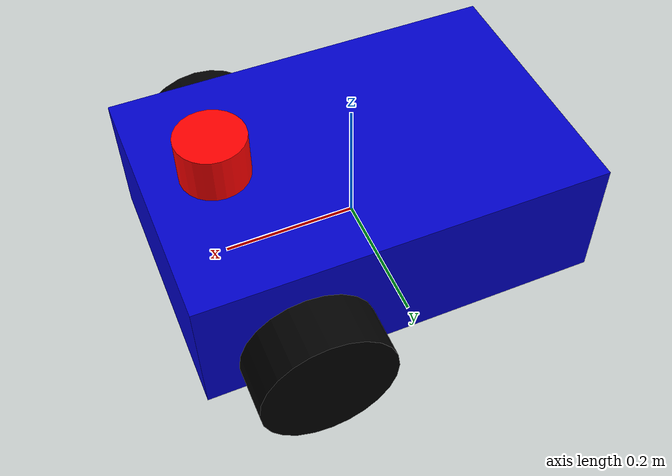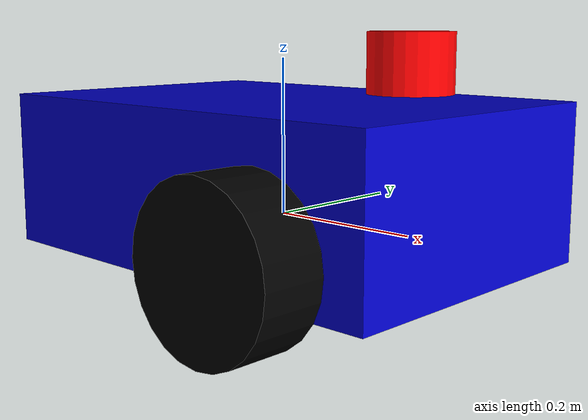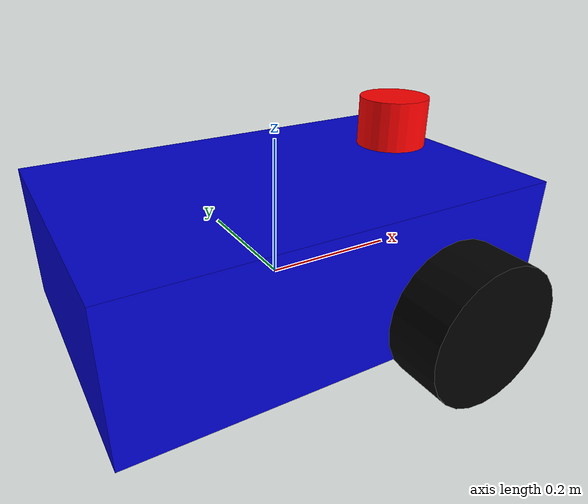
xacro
<?xml version="1.0"?>
<robot xmlns:xacro="http://www.ros.org/wiki/xacro" name="simple_robot">

    <!-- 수학 상수 -->
    <xacro:property name="pi_2" value="${pi/2}"/>

    <!-- 로봇 기하학 파라미터 -->

    <!-- Base(본체) -->
    <xacro:property name="base_length" value="0.6"/>
    <xacro:property name="base_width" value="0.4"/>
    <xacro:property name="base_height" value="0.2"/>
    <xacro:property name="base_mass" value="10"/>
    <xacro:property name="base_z_offset" value="0.05"/>

    <!-- Wheel(바퀴) -->
    <xacro:property name="wheel_radius" value="0.1"/>
    <xacro:property name="wheel_thickness" value="0.08"/>
    <xacro:property name="wheel_mass" value="1"/>
    <xacro:property name="wheel_separation" value="0.48"/>
    <xacro:property name="wheel_x_offset" value="0.15"/>
    <xacro:property name="wheel_z_offset" value="0"/>
    <xacro:property name="wheel_axis_direction" value="0 0 -1"/>

    <!-- Caster(캐스터) -->
    <xacro:property name="caster_radius" value="0.05"/>
    <xacro:property name="caster_mass" value="0.5"/>
    <xacro:property name="caster_x_offset" value="-0.2"/>
    <xacro:property name="caster_y_offset" value="0"/>
    <xacro:property name="caster_z_offset" value="-0.05"/>
    <xacro:property name="caster_friction_mu1" value="0.0"/>
    <xacro:property name="caster_friction_mu2" value="0.0"/>

    <!-- LiDAR -->
    <xacro:property name="lidar_radius" value="0.05"/>
    <xacro:property name="lidar_length" value="0.07"/>
    <xacro:property name="lidar_mass" value="0.3"/>
    <xacro:property name="lidar_x_offset" value="0.2"/>
    <xacro:property name="lidar_y_offset" value="0"/>
    <xacro:property name="lidar_z_offset" value="0.2"/>

    <!-- 색상 정의 -->
    <xacro:property name="color_blue" value="0 0 0.8 1"/>
    <xacro:property name="color_black" value="0 0 0 1"/>
    <xacro:property name="color_gray" value="0.5 0.5 0.5 1"/>
    <xacro:property name="color_red" value="1 0 0 1"/>

    <!-- ROS/Gazebo 토픽 및 프레임 -->
    <xacro:property name="odom_frame" value="odom"/>
    <xacro:property name="base_frame" value="base_link"/>
    <xacro:property name="cmd_vel_topic" value="cmd_vel"/>
    <xacro:property name="tf_topic" value="/tf"/>
    <xacro:property name="scan_topic" value="scan"/>

    <!-- 센서 파라미터 -->

    <!-- LiDAR -->
    <xacro:property name="lidar_update_rate" value="10"/>
    <xacro:property name="lidar_samples" value="360"/>
    <xacro:property name="lidar_resolution" value="1"/>
    <xacro:property name="lidar_min_angle" value="${-pi}"/>
    <xacro:property name="lidar_max_angle" value="${pi}"/>
    <xacro:property name="lidar_min_range" value="0.12"/>
    <xacro:property name="lidar_max_range" value="10.0"/>
    <xacro:property name="lidar_visualize" value="true"/>

    <!-- Odometry -->
    <xacro:property name="odom_publish_frequency" value="50"/>

    <!-- Gazebo 플러그인 파라미터 -->
    <xacro:property name="render_engine" value="ogre2"/>

    <!-- 관성 모멘트 계산 매크로 -->

    <!-- 직육면체(Box) -->
    <xacro:macro name="box_inertia" params="mass x y z">
        <inertial>
            <mass value="${mass}"/>
            <inertia
                    ixx="${(1/12) * mass * (y*y + z*z)}"
                    ixy="0.0"
                    ixz="0.0"
                    iyy="${(1/12) * mass * (x*x + z*z)}"
                    iyz="0.0"
                    izz="${(1/12) * mass * (x*x + y*y)}"/>
        </inertial>
    </xacro:macro>

    <!-- 원통(Cylinder) -->
    <xacro:macro name="cylinder_inertia" params="mass radius length">
        <inertial>
            <mass value="${mass}"/>
            <inertia
                    ixx="${(1/12) * mass * (3 * radius * radius + length * length)}"
                    ixy="0.0"
                    ixz="0.0"
                    iyy="${(1/12) * mass * (3 * radius * radius + length * length)}"
                    iyz="0.0"
                    izz="${(1/2) * mass * radius * radius}"/>
        </inertial>
    </xacro:macro>

    <!-- 구(Sphere) -->
    <xacro:macro name="sphere_inertia" params="mass radius">
        <inertial>
            <mass value="${mass}"/>
            <inertia
                    ixx="${(2/5) * mass * radius * radius}"
                    ixy="0.0"
                    ixz="0.0"
                    iyy="${(2/5) * mass * radius * radius}"
                    iyz="0.0"
                    izz="${(2/5) * mass * radius * radius}"/>
        </inertial>
    </xacro:macro>

    <!-- 색상 재료 매크로 -->
    <xacro:macro name="material_color" params="name rgba">
        <material name="${name}">
            <color rgba="${rgba}"/>
        </material>
    </xacro:macro>

    <!-- Base Link -->
    <link name="${base_frame}">
        <visual>
            <origin xyz="0 0 ${base_z_offset}" rpy="0 0 0"/>
            <geometry>
                <box size="${base_length} ${base_width} ${base_height}"/>
            </geometry>
            <xacro:material_color name="blue" rgba="${color_blue}"/>
        </visual>
        <collision>
            <origin xyz="0 0 ${base_z_offset}" rpy="0 0 0"/>
            <geometry>
                <box size="${base_length} ${base_width} ${base_height}"/>
            </geometry>
        </collision>
        <xacro:box_inertia mass="${base_mass}"
                           x="${base_length}"
                           y="${base_width}"
                           z="${base_height}"/>
    </link>

    <!-- Wheel 매크로 -->
    <xacro:macro name="wheel" params="prefix reflect">
        <link name="${prefix}_wheel">
            <visual>
                <geometry>
                    <cylinder radius="${wheel_radius}" length="${wheel_thickness}"/>
                </geometry>
                <xacro:material_color name="black" rgba="${color_black}"/>
            </visual>
            <collision>
                <geometry>
                    <cylinder radius="${wheel_radius}" length="${wheel_thickness}"/>
                </geometry>
            </collision>
            <xacro:cylinder_inertia mass="${wheel_mass}"
                                    radius="${wheel_radius}"
                                    length="${wheel_thickness}"/>
        </link>

        <joint name="${prefix}_wheel_joint" type="continuous">
            <parent link="${base_frame}"/>
            <child link="${prefix}_wheel"/>
            <origin xyz="${wheel_x_offset} ${reflect * wheel_separation/2} ${wheel_z_offset}"
                    rpy="${pi_2} 0 0"/>
            <axis xyz="${wheel_axis_direction}"/>
        </joint>
    </xacro:macro>

    <!-- Wheel 인스턴스 생성 -->
    <xacro:wheel prefix="left" reflect="1"/>
    <xacro:wheel prefix="right" reflect="-1"/>

    <!-- Caster 매크로 -->
    <xacro:macro name="caster" params="name x_offset y_offset z_offset">
        <link name="${name}">
            <visual>
                <geometry>
                    <sphere radius="${caster_radius}"/>
                </geometry>
                <xacro:material_color name="gray" rgba="${color_gray}"/>
            </visual>
            <collision>
                <geometry>
                    <sphere radius="${caster_radius}"/>
                </geometry>
            </collision>
            <xacro:sphere_inertia mass="${caster_mass}"
                                  radius="${caster_radius}"/>
        </link>

        <joint name="${name}_joint" type="fixed">
            <parent link="${base_frame}"/>
            <child link="${name}"/>
            <origin xyz="${x_offset} ${y_offset} ${z_offset}" rpy="0 0 0"/>
        </joint>

        <gazebo reference="${name}">
            <mu1>${caster_friction_mu1}</mu1>
            <mu2>${caster_friction_mu2}</mu2>
        </gazebo>
    </xacro:macro>

    <!-- Caster 인스턴스 생성 -->
    <xacro:caster name="rear_caster"
                  x_offset="${caster_x_offset}"
                  y_offset="${caster_y_offset}"
                  z_offset="${caster_z_offset}"/>

    <!-- LiDAR 매크로 -->
    <xacro:macro name="lidar_sensor" params="name parent x_offset y_offset z_offset">
        <link name="${name}">
            <visual>
                <geometry>
                    <cylinder radius="${lidar_radius}" length="${lidar_length}"/>
                </geometry>
                <xacro:material_color name="red" rgba="${color_red}"/>
            </visual>
            <collision>
                <geometry>
                    <cylinder radius="${lidar_radius}" length="${lidar_length}"/>
                </geometry>
            </collision>
            <xacro:cylinder_inertia mass="${lidar_mass}"
                                    radius="${lidar_radius}"
                                    length="${lidar_length}"/>
        </link>

        <joint name="${name}_joint" type="fixed">
            <parent link="${parent}"/>
            <child link="${name}"/>
            <origin xyz="${x_offset} ${y_offset} ${z_offset}" rpy="0 0 0"/>
        </joint>

        <gazebo reference="${name}">
            <sensor name="gpu_lidar" type="gpu_lidar">
                <topic>${scan_topic}</topic>
                <update_rate>${lidar_update_rate}</update_rate>
                <lidar>
                    <scan>
                        <horizontal>
                            <samples>${lidar_samples}</samples>
                            <resolution>${lidar_resolution}</resolution>
                            <min_angle>${lidar_min_angle}</min_angle>
                            <max_angle>${lidar_max_angle}</max_angle>
                        </horizontal>
                    </scan>
                    <range>
                        <min>${lidar_min_range}</min>
                        <max>${lidar_max_range}</max>
                    </range>
                </lidar>
                <visualize>${lidar_visualize}</visualize>
            </sensor>
        </gazebo>
    </xacro:macro>

    <!-- LiDAR 인스턴스 생성 -->
    <xacro:lidar_sensor name="lidar_link"
                        parent="${base_frame}"
                        x_offset="${lidar_x_offset}"
                        y_offset="${lidar_y_offset}"
                        z_offset="${lidar_z_offset}"/>

    <!-- Gazebo Plugins -->

    <!-- Differential Drive Plugin -->
    <gazebo>
        <plugin filename="gz-sim-diff-drive-system" name="gz::sim::systems::DiffDrive">
            <left_joint>left_wheel_joint</left_joint>
            <right_joint>right_wheel_joint</right_joint>
            <wheel_separation>${wheel_separation}</wheel_separation>
            <wheel_radius>${wheel_radius}</wheel_radius>
            <odom_publish_frequency>${odom_publish_frequency}</odom_publish_frequency>
            <topic>${cmd_vel_topic}</topic>
            <tf_topic>${tf_topic}</tf_topic>
            <frame_id>${odom_frame}</frame_id>
            <child_frame_id>${base_frame}</child_frame_id>
        </plugin>
    </gazebo>

    <!-- Sensors System Plugin -->
    <gazebo>
        <plugin filename="gz-sim-sensors-system" name="gz::sim::systems::Sensors">
            <render_engine>${render_engine}</render_engine>
        </plugin>
    </gazebo>

    <!-- Joint State Publisher Plugin -->
    <gazebo>
        <plugin filename="gz-sim-joint-state-publisher-system"
                name="gz::sim::systems::JointStatePublisher">
        </plugin>
    </gazebo>

</robot>
